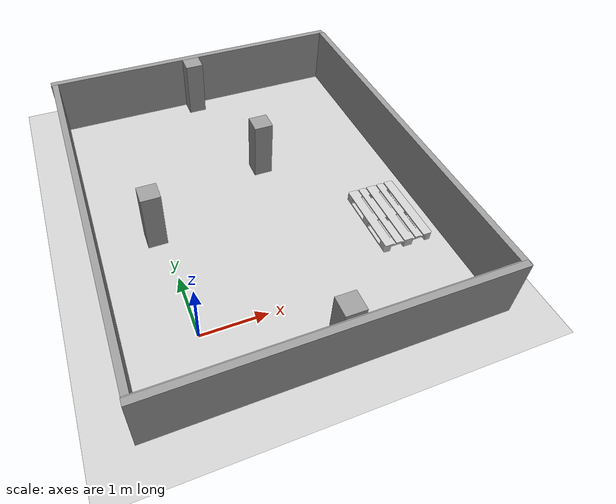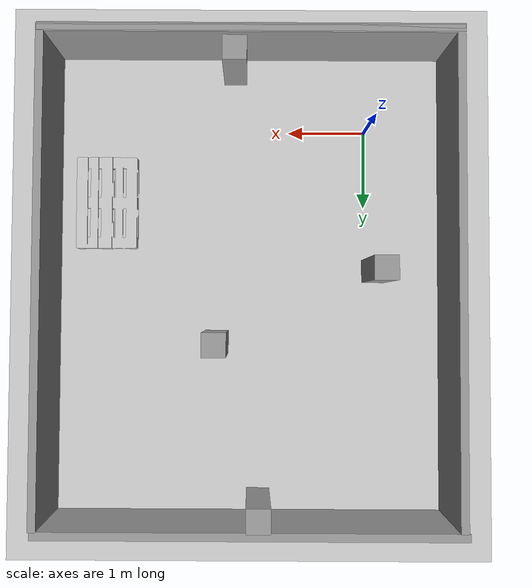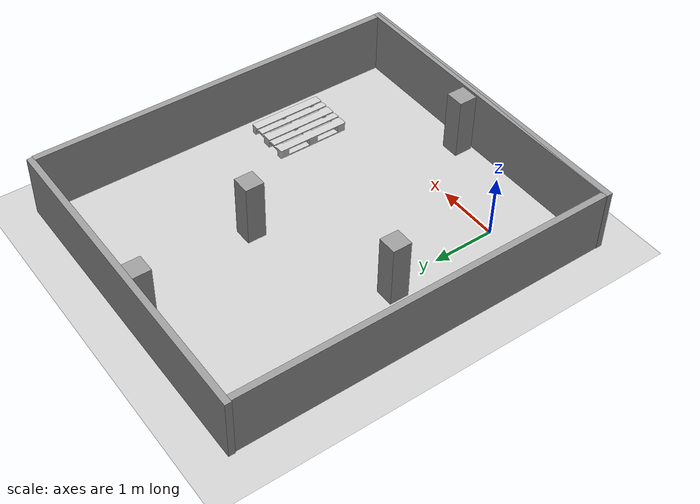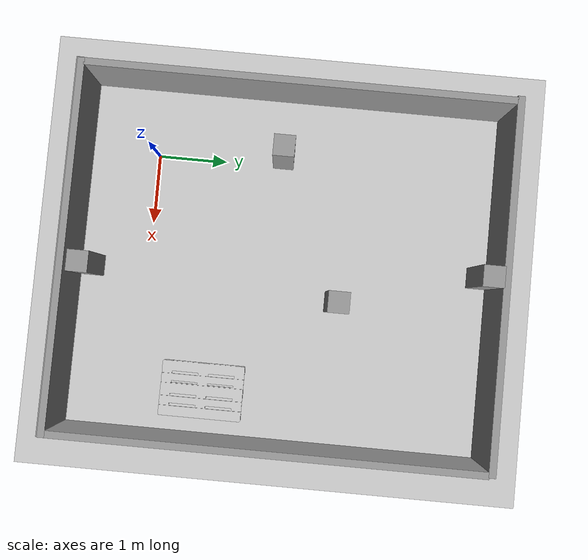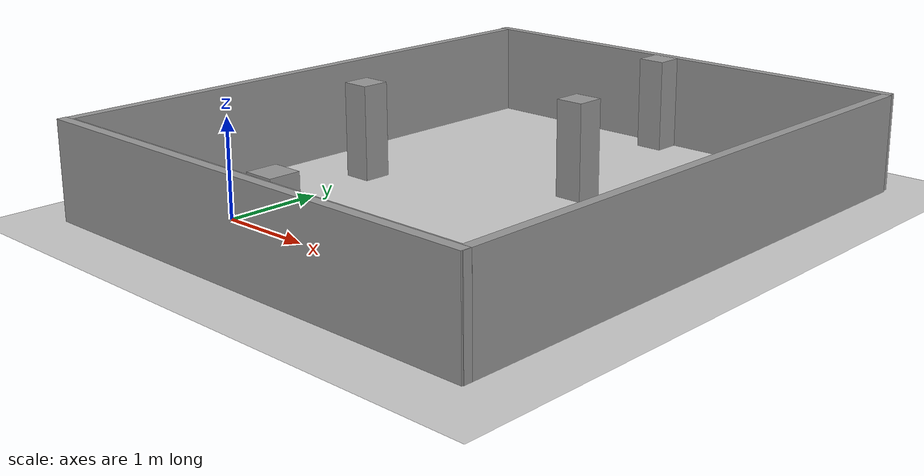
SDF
<sdf version="1.7">
 <world name="default">
  <light name="sun" type="directional">
   <pose>0 0 10 0 -0 0</pose>
   <diffuse>0.8 0.8 0.8 1</diffuse>
   <specular>0.2 0.2 0.2 1</specular>
   <attenuation>
    <range>1000</range>
    <constant>0.9</constant>
    <linear>0.01</linear>
    <quadratic>0.001</quadratic>
   </attenuation>
   <direction>-0.5 0.1 -0.9</direction>
   <spot><inner_angle>0</inner_angle><outer_angle>0</outer_angle><falloff>0</falloff></spot>
  </light>
  <model name="ground_plane">
   <static>1</static>
   <link name="link">
    <collision name="collision">
     <geometry><plane><normal>0 0 1</normal><size>100 100</size></plane></geometry>
     <surface>
      <contact><collide_bitmask>65535</collide_bitmask></contact>
      <friction><ode><mu>100</mu><mu2>50</mu2></ode></friction>
     </surface>
    </collision>
    <visual name="visual">
     <cast_shadows>0</cast_shadows>
     <geometry><plane><normal>0 0 1</normal><size>100 100</size></plane></geometry>
     <material>
      <script><uri>file://media/materials/scripts/gazebo.material</uri><name>Gazebo/Grey</name></script>
     </material>
    </visual>
   </link>
  </model>
  <gravity>0 0 -9.8</gravity>
  <magnetic_field>6e-06 2.3e-05 -4.2e-05</magnetic_field>
  <atmosphere type="adiabatic"/>
  <physics type="ode">
   <max_step_size>0.001</max_step_size>
   <real_time_factor>1</real_time_factor>
   <real_time_update_rate>1000</real_time_update_rate>
  </physics>
  <scene><ambient>0.4 0.4 0.4 1</ambient><background>0.7 0.7 0.7 1</background><shadows>1</shadows></scene>
  <spherical_coordinates>
   <surface_model>EARTH_WGS84</surface_model>
   <latitude_deg>0</latitude_deg>
   <longitude_deg>0</longitude_deg>
   <elevation>0</elevation>
   <heading_deg>0</heading_deg>
  </spherical_coordinates>
  <model name="Untitled">
   <link name="link_0">
    <inertial>
     <mass>1</mass>
     <inertia>
      <ixx>0.166667</ixx>
      <ixy>0</ixy>
      <ixz>0</ixz>
      <iyy>0.166667</iyy>
      <iyz>0</iyz>
      <izz>0.166667</izz>
     </inertia>
    </inertial>
    <pose>-2.62357 0.335857 0.040445 0 -0 0</pose>
    <visual name="visual">
     <geometry><box><size>0.1 6 1</size></box></geometry>
     <material>
      <lighting>1</lighting>
      <script><uri>file://media/materials/scripts/gazebo.material</uri><name>Gazebo/Grey</name></script>
      <shader type="pixel"><normal_map>__default__</normal_map></shader>
      <ambient>0.3 0.3 0.3 1</ambient>
      <diffuse>0.7 0.7 0.7 1</diffuse>
      <specular>0.01 0.01 0.01 1</specular>
      <emissive>0 0 0 1</emissive>
     </material>
    </visual>
    <collision name="collision">
     <geometry><box><size>0.1 6 1</size></box></geometry>
     <surface>
      <friction>
       <ode><mu>1</mu><mu2>1</mu2><fdir1>0 0 0</fdir1><slip1>0</slip1><slip2>0</slip2></ode>
       <torsional>
        <coefficient>1</coefficient>
        <patch_radius>0</patch_radius>
        <surface_radius>0</surface_radius>
        <use_patch_radius>1</use_patch_radius>
        <ode><slip>0</slip></ode>
       </torsional>
      </friction>
      <bounce><restitution_coefficient>0</restitution_coefficient><threshold>1e+06</threshold></bounce>
      <contact>
       <collide_without_contact>0</collide_without_contact>
       <collide_without_contact_bitmask>1</collide_without_contact_bitmask>
       <collide_bitmask>1</collide_bitmask>
       <ode>
        <soft_cfm>0</soft_cfm>
        <soft_erp>0.2</soft_erp>
        <kp>1e+13</kp>
        <kd>1</kd>
        <max_vel>0.01</max_vel>
        <min_depth>0</min_depth>
       </ode>
       <bullet>
        <split_impulse>1</split_impulse>
        <split_impulse_penetration_threshold>-0.01</split_impulse_penetration_threshold>
        <soft_cfm>0</soft_cfm>
        <soft_erp>0.2</soft_erp>
        <kp>1e+13</kp>
        <kd>1</kd>
       </bullet>
      </contact>
     </surface>
    </collision>
   </link>
   <link name="link_0_clone">
    <inertial>
     <mass>1</mass>
     <inertia>
      <ixx>0.166667</ixx>
      <ixy>0</ixy>
      <ixz>0</ixz>
      <iyy>0.166667</iyy>
      <iyz>0</iyz>
      <izz>0.166667</izz>
     </inertia>
    </inertial>
    <pose>2.47999 0.337656 0.040445 0 -0 0</pose>
    <visual name="visual">
     <geometry><box><size>0.1 6 1</size></box></geometry>
     <material>
      <lighting>1</lighting>
      <script><uri>file://media/materials/scripts/gazebo.material</uri><name>Gazebo/Grey</name></script>
      <shader type="pixel"><normal_map>__default__</normal_map></shader>
      <ambient>0.3 0.3 0.3 1</ambient>
      <diffuse>0.7 0.7 0.7 1</diffuse>
      <specular>0.01 0.01 0.01 1</specular>
      <emissive>0 0 0 1</emissive>
     </material>
    </visual>
    <collision name="collision">
     <geometry><box><size>0.1 6 1</size></box></geometry>
     <surface>
      <friction>
       <ode><mu>1</mu><mu2>1</mu2><fdir1>0 0 0</fdir1><slip1>0</slip1><slip2>0</slip2></ode>
       <torsional>
        <coefficient>1</coefficient>
        <patch_radius>0</patch_radius>
        <surface_radius>0</surface_radius>
        <use_patch_radius>1</use_patch_radius>
        <ode><slip>0</slip></ode>
       </torsional>
      </friction>
      <bounce><restitution_coefficient>0</restitution_coefficient><threshold>1e+06</threshold></bounce>
      <contact>
       <collide_without_contact>0</collide_without_contact>
       <collide_without_contact_bitmask>1</collide_without_contact_bitmask>
       <collide_bitmask>1</collide_bitmask>
       <ode>
        <soft_cfm>0</soft_cfm>
        <soft_erp>0.2</soft_erp>
        <kp>1e+13</kp>
        <kd>1</kd>
        <max_vel>0.01</max_vel>
        <min_depth>0</min_depth>
       </ode>
       <bullet>
        <split_impulse>1</split_impulse>
        <split_impulse_penetration_threshold>-0.01</split_impulse_penetration_threshold>
        <soft_cfm>0</soft_cfm>
        <soft_erp>0.2</soft_erp>
        <kp>1e+13</kp>
        <kd>1</kd>
       </bullet>
      </contact>
     </surface>
    </collision>
   </link>
   <link name="link_0_clone_clone">
    <inertial>
     <mass>1</mass>
     <inertia>
      <ixx>0.166667</ixx>
      <ixy>0</ixy>
      <ixz>0</ixz>
      <iyy>0.166667</iyy>
      <iyz>0</iyz>
      <izz>0.166667</izz>
     </inertia>
    </inertial>
    <pose>-0.090437 3.37618 0.040445 0 -0 0</pose>
    <visual name="visual">
     <geometry><box><size>5.2 0.1 1</size></box></geometry>
     <material>
      <lighting>1</lighting>
      <script><uri>file://media/materials/scripts/gazebo.material</uri><name>Gazebo/Grey</name></script>
      <shader type="pixel"><normal_map>__default__</normal_map></shader>
      <ambient>0.3 0.3 0.3 1</ambient>
      <diffuse>0.7 0.7 0.7 1</diffuse>
      <specular>0.01 0.01 0.01 1</specular>
      <emissive>0 0 0 1</emissive>
     </material>
    </visual>
    <collision name="collision">
     <geometry><box><size>5.2 0.1 1</size></box></geometry>
     <surface>
      <friction>
       <ode><mu>1</mu><mu2>1</mu2><fdir1>0 0 0</fdir1><slip1>0</slip1><slip2>0</slip2></ode>
       <torsional>
        <coefficient>1</coefficient>
        <patch_radius>0</patch_radius>
        <surface_radius>0</surface_radius>
        <use_patch_radius>1</use_patch_radius>
        <ode><slip>0</slip></ode>
       </torsional>
      </friction>
      <bounce><restitution_coefficient>0</restitution_coefficient><threshold>1e+06</threshold></bounce>
      <contact>
       <collide_without_contact>0</collide_without_contact>
       <collide_without_contact_bitmask>1</collide_without_contact_bitmask>
       <collide_bitmask>1</collide_bitmask>
       <ode>
        <soft_cfm>0</soft_cfm>
        <soft_erp>0.2</soft_erp>
        <kp>1e+13</kp>
        <kd>1</kd>
        <max_vel>0.01</max_vel>
        <min_depth>0</min_depth>
       </ode>
       <bullet>
        <split_impulse>1</split_impulse>
        <split_impulse_penetration_threshold>-0.01</split_impulse_penetration_threshold>
        <soft_cfm>0</soft_cfm>
        <soft_erp>0.2</soft_erp>
        <kp>1e+13</kp>
        <kd>1</kd>
       </bullet>
      </contact>
     </surface>
    </collision>
   </link>
   <link name="link_0_clone_clone_clone">
    <inertial>
     <mass>1</mass>
     <inertia>
      <ixx>0.166667</ixx>
      <ixy>0</ixy>
      <ixz>0</ixz>
      <iyy>0.166667</iyy>
      <iyz>0</iyz>
      <izz>0.166667</izz>
     </inertia>
    </inertial>
    <pose>-0.07889 -2.71349 0.040445 0 -0 0</pose>
    <visual name="visual">
     <geometry><box><size>5.2 0.1 1</size></box></geometry>
     <material>
      <lighting>1</lighting>
      <script><uri>file://media/materials/scripts/gazebo.material</uri><name>Gazebo/Grey</name></script>
      <shader type="pixel"><normal_map>__default__</normal_map></shader>
      <ambient>0.3 0.3 0.3 1</ambient>
      <diffuse>0.7 0.7 0.7 1</diffuse>
      <specular>0.01 0.01 0.01 1</specular>
      <emissive>0 0 0 1</emissive>
     </material>
    </visual>
    <collision name="collision">
     <geometry><box><size>5.2 0.1 1</size></box></geometry>
     <surface>
      <friction>
       <ode><mu>1</mu><mu2>1</mu2><fdir1>0 0 0</fdir1><slip1>0</slip1><slip2>0</slip2></ode>
       <torsional>
        <coefficient>1</coefficient>
        <patch_radius>0</patch_radius>
        <surface_radius>0</surface_radius>
        <use_patch_radius>1</use_patch_radius>
        <ode><slip>0</slip></ode>
       </torsional>
      </friction>
      <bounce><restitution_coefficient>0</restitution_coefficient><threshold>1e+06</threshold></bounce>
      <contact>
       <collide_without_contact>0</collide_without_contact>
       <collide_without_contact_bitmask>1</collide_without_contact_bitmask>
       <collide_bitmask>1</collide_bitmask>
       <ode>
        <soft_cfm>0</soft_cfm>
        <soft_erp>0.2</soft_erp>
        <kp>1e+13</kp>
        <kd>1</kd>
        <max_vel>0.01</max_vel>
        <min_depth>0</min_depth>
       </ode>
       <bullet>
        <split_impulse>1</split_impulse>
        <split_impulse_penetration_threshold>-0.01</split_impulse_penetration_threshold>
        <soft_cfm>0</soft_cfm>
        <soft_erp>0.2</soft_erp>
        <kp>1e+13</kp>
        <kd>1</kd>
       </bullet>
      </contact>
     </surface>
    </collision>
   </link>
   <link name="link_0_clone_clone_clone_0">
    <inertial>
     <mass>1</mass>
     <inertia>
      <ixx>0.166667</ixx>
      <ixy>0</ixy>
      <ixz>0</ixz>
      <iyy>0.166667</iyy>
      <iyz>0</iyz>
      <izz>0.166667</izz>
     </inertia>
    </inertial>
    <pose>-0.070323 -2.69925 0.040445 0 -0 0</pose>
    <visual name="visual">
     <geometry><box><size>5.2 0.1 1</size></box></geometry>
     <material>
      <lighting>1</lighting>
      <script><uri>file://media/materials/scripts/gazebo.material</uri><name>Gazebo/Grey</name></script>
      <shader type="pixel"><normal_map>__default__</normal_map></shader>
      <ambient>0.3 0.3 0.3 1</ambient>
      <diffuse>0.7 0.7 0.7 1</diffuse>
      <specular>0.01 0.01 0.01 1</specular>
      <emissive>0 0 0 1</emissive>
     </material>
    </visual>
    <collision name="collision">
     <geometry><box><size>5.2 0.1 1</size></box></geometry>
     <surface>
      <friction>
       <ode><mu>1</mu><mu2>1</mu2><fdir1>0 0 0</fdir1><slip1>0</slip1><slip2>0</slip2></ode>
       <torsional>
        <coefficient>1</coefficient>
        <patch_radius>0</patch_radius>
        <surface_radius>0</surface_radius>
        <use_patch_radius>1</use_patch_radius>
        <ode><slip>0</slip></ode>
       </torsional>
      </friction>
      <bounce><restitution_coefficient>0</restitution_coefficient><threshold>1e+06</threshold></bounce>
      <contact>
       <collide_without_contact>0</collide_without_contact>
       <collide_without_contact_bitmask>1</collide_without_contact_bitmask>
       <collide_bitmask>1</collide_bitmask>
       <ode>
        <soft_cfm>0</soft_cfm>
        <soft_erp>0.2</soft_erp>
        <kp>1e+13</kp>
        <kd>1</kd>
        <max_vel>0.01</max_vel>
        <min_depth>0</min_depth>
       </ode>
       <bullet>
        <split_impulse>1</split_impulse>
        <split_impulse_penetration_threshold>-0.01</split_impulse_penetration_threshold>
        <soft_cfm>0</soft_cfm>
        <soft_erp>0.2</soft_erp>
        <kp>1e+13</kp>
        <kd>1</kd>
       </bullet>
      </contact>
     </surface>
    </collision>
   </link>
   <link name="link_2">
    <inertial>
     <mass>1</mass>
     <inertia>
      <ixx>0.166667</ixx>
      <ixy>0</ixy>
      <ixz>0</ixz>
      <iyy>0.166667</iyy>
      <iyz>0</iyz>
      <izz>0.166667</izz>
     </inertia>
    </inertial>
    <pose>0.354417 1.12777 0.040445 0 -0 0</pose>
    <visual name="visual">
     <geometry><box><size>0.3 0.3 1</size></box></geometry>
     <material>
      <lighting>1</lighting>
      <script><uri>file://media/materials/scripts/gazebo.material</uri><name>Gazebo/Grey</name></script>
      <shader type="pixel"><normal_map>__default__</normal_map></shader>
      <ambient>0.3 0.3 0.3 1</ambient>
      <diffuse>0.7 0.7 0.7 1</diffuse>
      <specular>0.01 0.01 0.01 1</specular>
      <emissive>0 0 0 1</emissive>
     </material>
    </visual>
    <collision name="collision">
     <geometry><box><size>0.3 0.3 1</size></box></geometry>
     <surface>
      <friction>
       <ode><mu>1</mu><mu2>1</mu2><fdir1>0 0 0</fdir1><slip1>0</slip1><slip2>0</slip2></ode>
       <torsional>
        <coefficient>1</coefficient>
        <patch_radius>0</patch_radius>
        <surface_radius>0</surface_radius>
        <use_patch_radius>1</use_patch_radius>
        <ode><slip>0</slip></ode>
       </torsional>
      </friction>
      <bounce><restitution_coefficient>0</restitution_coefficient><threshold>1e+06</threshold></bounce>
      <contact>
       <collide_without_contact>0</collide_without_contact>
       <collide_without_contact_bitmask>1</collide_without_contact_bitmask>
       <collide_bitmask>1</collide_bitmask>
       <ode>
        <soft_cfm>0</soft_cfm>
        <soft_erp>0.2</soft_erp>
        <kp>1e+13</kp>
        <kd>1</kd>
        <max_vel>0.01</max_vel>
        <min_depth>0</min_depth>
       </ode>
       <bullet>
        <split_impulse>1</split_impulse>
        <split_impulse_penetration_threshold>-0.01</split_impulse_penetration_threshold>
        <soft_cfm>0</soft_cfm>
        <soft_erp>0.2</soft_erp>
        <kp>1e+13</kp>
        <kd>1</kd>
       </bullet>
      </contact>
     </surface>
    </collision>
   </link>
   <link name="link_2_clone">
    <inertial>
     <mass>1</mass>
     <inertia>
      <ixx>0.166667</ixx>
      <ixy>0</ixy>
      <ixz>0</ixz>
      <iyy>0.166667</iyy>
      <iyz>0</iyz>
      <izz>0.166667</izz>
     </inertia>
    </inertial>
    <pose>-1.71189 0.192196 0.040445 0 -0 0</pose>
    <visual name="visual">
     <geometry><box><size>0.3 0.3 1</size></box></geometry>
     <material>
      <lighting>1</lighting>
      <script><uri>file://media/materials/scripts/gazebo.material</uri><name>Gazebo/Grey</name></script>
      <shader type="pixel"><normal_map>__default__</normal_map></shader>
      <ambient>0.3 0.3 0.3 1</ambient>
      <diffuse>0.7 0.7 0.7 1</diffuse>
      <specular>0.01 0.01 0.01 1</specular>
      <emissive>0 0 0 1</emissive>
     </material>
    </visual>
    <collision name="collision">
     <geometry><box><size>0.3 0.3 1</size></box></geometry>
     <surface>
      <friction>
       <ode><mu>1</mu><mu2>1</mu2><fdir1>0 0 0</fdir1><slip1>0</slip1><slip2>0</slip2></ode>
       <torsional>
        <coefficient>1</coefficient>
        <patch_radius>0</patch_radius>
        <surface_radius>0</surface_radius>
        <use_patch_radius>1</use_patch_radius>
        <ode><slip>0</slip></ode>
       </torsional>
      </friction>
      <bounce><restitution_coefficient>0</restitution_coefficient><threshold>1e+06</threshold></bounce>
      <contact>
       <collide_without_contact>0</collide_without_contact>
       <collide_without_contact_bitmask>1</collide_without_contact_bitmask>
       <collide_bitmask>1</collide_bitmask>
       <ode>
        <soft_cfm>0</soft_cfm>
        <soft_erp>0.2</soft_erp>
        <kp>1e+13</kp>
        <kd>1</kd>
        <max_vel>0.01</max_vel>
        <min_depth>0</min_depth>
       </ode>
       <bullet>
        <split_impulse>1</split_impulse>
        <split_impulse_penetration_threshold>-0.01</split_impulse_penetration_threshold>
        <soft_cfm>0</soft_cfm>
        <soft_erp>0.2</soft_erp>
        <kp>1e+13</kp>
        <kd>1</kd>
       </bullet>
      </contact>
     </surface>
    </collision>
   </link>
   <link name="link_2_clone_clone">
    <inertial>
     <mass>1</mass>
     <inertia>
      <ixx>0.166667</ixx>
      <ixy>0</ixy>
      <ixz>0</ixz>
      <iyy>0.166667</iyy>
      <iyz>0</iyz>
      <izz>0.166667</izz>
     </inertia>
    </inertial>
    <pose>-0.190282 3.19472 0.040445 0 -0 0</pose>
    <visual name="visual">
     <geometry><box><size>0.3 0.3 1</size></box></geometry>
     <material>
      <lighting>1</lighting>
      <script><uri>file://media/materials/scripts/gazebo.material</uri><name>Gazebo/Grey</name></script>
      <shader type="pixel"><normal_map>__default__</normal_map></shader>
      <ambient>0.3 0.3 0.3 1</ambient>
      <diffuse>0.7 0.7 0.7 1</diffuse>
      <specular>0.01 0.01 0.01 1</specular>
      <emissive>0 0 0 1</emissive>
     </material>
    </visual>
    <collision name="collision">
     <geometry><box><size>0.3 0.3 1</size></box></geometry>
     <surface>
      <friction>
       <ode><mu>1</mu><mu2>1</mu2><fdir1>0 0 0</fdir1><slip1>0</slip1><slip2>0</slip2></ode>
       <torsional>
        <coefficient>1</coefficient>
        <patch_radius>0</patch_radius>
        <surface_radius>0</surface_radius>
        <use_patch_radius>1</use_patch_radius>
        <ode><slip>0</slip></ode>
       </torsional>
      </friction>
      <bounce><restitution_coefficient>0</restitution_coefficient><threshold>1e+06</threshold></bounce>
      <contact>
       <collide_without_contact>0</collide_without_contact>
       <collide_without_contact_bitmask>1</collide_without_contact_bitmask>
       <collide_bitmask>1</collide_bitmask>
       <ode>
        <soft_cfm>0</soft_cfm>
        <soft_erp>0.2</soft_erp>
        <kp>1e+13</kp>
        <kd>1</kd>
        <max_vel>0.01</max_vel>
        <min_depth>0</min_depth>
       </ode>
       <bullet>
        <split_impulse>1</split_impulse>
        <split_impulse_penetration_threshold>-0.01</split_impulse_penetration_threshold>
        <soft_cfm>0</soft_cfm>
        <soft_erp>0.2</soft_erp>
        <kp>1e+13</kp>
        <kd>1</kd>
       </bullet>
      </contact>
     </surface>
    </collision>
   </link>
   <link name="link_2_clone_clone_clone">
    <inertial>
     <mass>1</mass>
     <inertia>
      <ixx>0.166667</ixx>
      <ixy>0</ixy>
      <ixz>0</ixz>
      <iyy>0.166667</iyy>
      <iyz>0</iyz>
      <izz>0.166667</izz>
     </inertia>
    </inertial>
    <pose>0.122943 -2.4625 0.040445 0 -0 0</pose>
    <visual name="visual">
     <geometry><box><size>0.3 0.3 1</size></box></geometry>
     <material>
      <lighting>1</lighting>
      <script><uri>file://media/materials/scripts/gazebo.material</uri><name>Gazebo/Grey</name></script>
      <shader type="pixel"><normal_map>__default__</normal_map></shader>
      <ambient>0.3 0.3 0.3 1</ambient>
      <diffuse>0.7 0.7 0.7 1</diffuse>
      <specular>0.01 0.01 0.01 1</specular>
      <emissive>0 0 0 1</emissive>
     </material>
    </visual>
    <collision name="collision">
     <geometry><box><size>0.3 0.3 1</size></box></geometry>
     <surface>
      <friction>
       <ode><mu>1</mu><mu2>1</mu2><fdir1>0 0 0</fdir1><slip1>0</slip1><slip2>0</slip2></ode>
       <torsional>
        <coefficient>1</coefficient>
        <patch_radius>0</patch_radius>
        <surface_radius>0</surface_radius>
        <use_patch_radius>1</use_patch_radius>
        <ode><slip>0</slip></ode>
       </torsional>
      </friction>
      <bounce><restitution_coefficient>0</restitution_coefficient><threshold>1e+06</threshold></bounce>
      <contact>
       <collide_without_contact>0</collide_without_contact>
       <collide_without_contact_bitmask>1</collide_without_contact_bitmask>
       <collide_bitmask>1</collide_bitmask>
       <ode>
        <soft_cfm>0</soft_cfm>
        <soft_erp>0.2</soft_erp>
        <kp>1e+13</kp>
        <kd>1</kd>
        <max_vel>0.01</max_vel>
        <min_depth>0</min_depth>
       </ode>
       <bullet>
        <split_impulse>1</split_impulse>
        <split_impulse_penetration_threshold>-0.01</split_impulse_penetration_threshold>
        <soft_cfm>0</soft_cfm>
        <soft_erp>0.2</soft_erp>
        <kp>1e+13</kp>
        <kd>1</kd>
       </bullet>
      </contact>
     </surface>
    </collision>
   </link>
   <model name="euro_pallet">
    <link name="link">
     <inertial>
      <mass>20</mass>
      <inertia><ixx>2.43</ixx><ixy>0</ixy><ixz>0</ixz><iyy>1.1</iyy><iyz>0</iyz><izz>3.47</izz></inertia>
     </inertial>
     <collision name="collision">
      <pose>0 0 0.05 0 -0 0</pose>
      <geometry><mesh><uri>model://euro_pallet/meshes/pallet.dae</uri><scale>0.1 0.1 0.1</scale></mesh></geometry>
     </collision>
     <visual name="visual">
      <pose>0 0 0.05 0 -0 0</pose>
      <geometry><mesh><uri>model://euro_pallet/meshes/pallet.dae</uri><scale>0.1 0.1 0.1</scale></mesh></geometry>
     </visual>
    </link>
    <pose>1.80803 -0.689146 -0.364004 0 -0 0</pose>
   </model>
   <static>0</static>
   <pose>1.58359 1.65354 0.459555 0 -0 0</pose>
  </model>
 </world>
</sdf>
